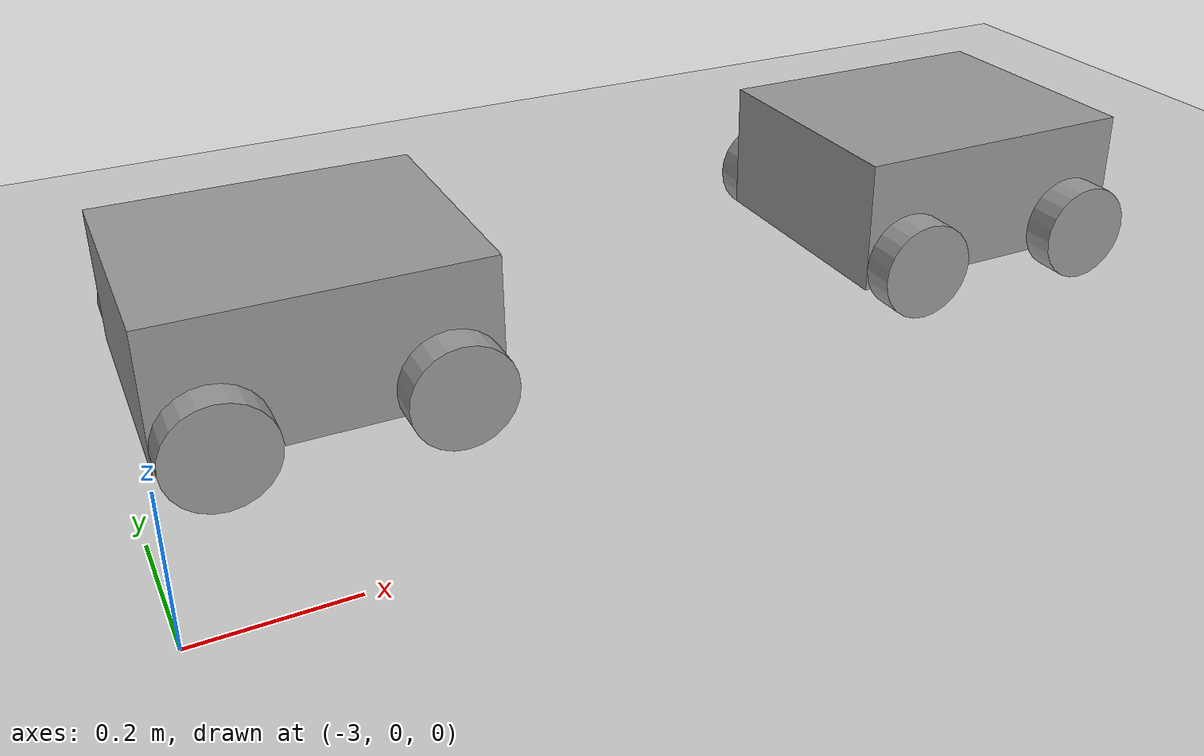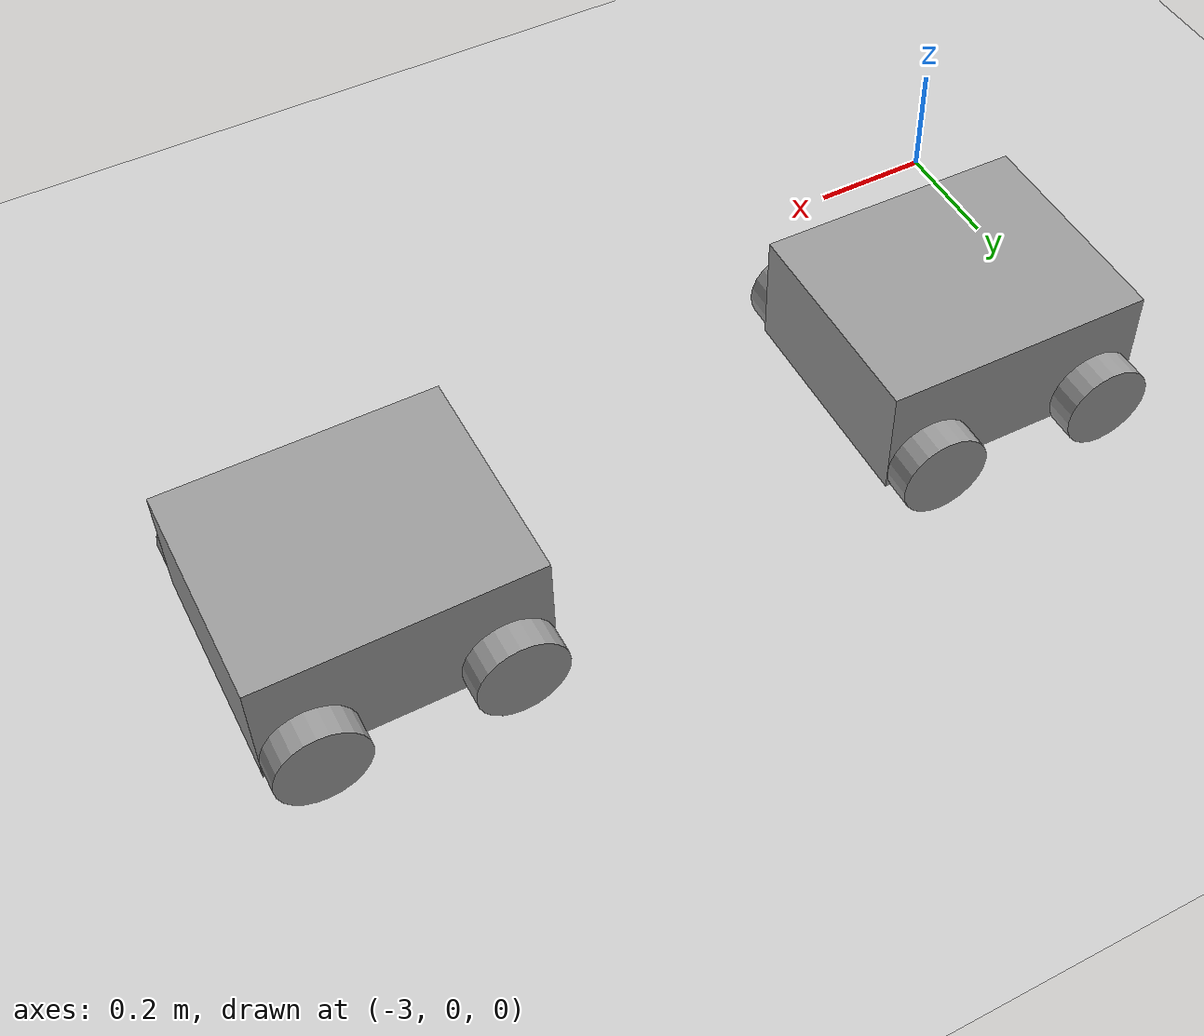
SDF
<sdf version="1.6">
 <world name="default">
  <model name="ground_plane">
   <static>1</static>
   <link name="link">
    <collision name="collision">
     <geometry><plane><normal>0 0 1</normal><size>100 100</size></plane></geometry>
     <surface><friction><ode><mu>100</mu><mu2>50</mu2></ode></friction></surface>
    </collision>
    <visual name="visual">
     <cast_shadows>0</cast_shadows>
     <geometry><plane><normal>0 0 1</normal><size>100 100</size></plane></geometry>
     <material>
      <script><uri>file://media/materials/scripts/gazebo.material</uri><name>Gazebo/Grey</name></script>
     </material>
    </visual>
   </link>
  </model>
  <model name="FourWheelRobot">
   <link name="link_0">
    <pose>-0 -9.6e-05 0.052002 0 -0 0</pose>
    <inertial>
     <mass>4.34169</mass>
     <inertia>
      <ixx>0.067015</ixx>
      <ixy>0</ixy>
      <ixz>0</ixz>
      <iyy>0.0896058</iyy>
      <iyz>0</iyz>
      <izz>0.127676</izz>
     </inertia>
    </inertial>
    <visual name="visual">
     <geometry><box><size>0.455699 0.381081 0.2</size></box></geometry>
     <material>
      <lighting>1</lighting>
      <script><uri>file://media/materials/scripts/gazebo.material</uri><name>Gazebo/Grey</name></script>
      <shader type="pixel"><normal_map>__default__</normal_map></shader>
      <ambient>0.3 0.3 0.3 1</ambient>
      <diffuse>0.7 0.7 0.7 1</diffuse>
      <specular>0.01 0.01 0.01 1</specular>
      <emissive>0 0 0 1</emissive>
     </material>
    </visual>
    <collision name="collision">
     <geometry><box><size>0.455699 0.381081 0.2</size></box></geometry>
     <surface>
      <friction>
       <ode><mu>1</mu><mu2>1</mu2><fdir1>0 0 0</fdir1><slip1>0</slip1><slip2>0</slip2></ode>
       <torsional>
        <coefficient>1</coefficient>
        <patch_radius>0</patch_radius>
        <surface_radius>0</surface_radius>
        <use_patch_radius>1</use_patch_radius>
        <ode><slip>0</slip></ode>
       </torsional>
      </friction>
      <bounce><restitution_coefficient>0</restitution_coefficient><threshold>1e+06</threshold></bounce>
      <contact>
       <collide_without_contact>0</collide_without_contact>
       <collide_without_contact_bitmask>1</collide_without_contact_bitmask>
       <collide_bitmask>1</collide_bitmask>
       <ode>
        <soft_cfm>0</soft_cfm>
        <soft_erp>0.2</soft_erp>
        <kp>1e+13</kp>
        <kd>1</kd>
        <max_vel>0.01</max_vel>
        <min_depth>0</min_depth>
       </ode>
       <bullet>
        <split_impulse>1</split_impulse>
        <split_impulse_penetration_threshold>-0.01</split_impulse_penetration_threshold>
        <soft_cfm>0</soft_cfm>
        <soft_erp>0.2</soft_erp>
        <kp>1e+13</kp>
        <kd>1</kd>
       </bullet>
      </contact>
     </surface>
    </collision>
   </link>
   <link name="link_1">
    <pose>-0.152849 0.215931 -0.013 1.5707 -0 0</pose>
    <inertial>
     <mass>1</mass>
     <inertia><ixx>0.145833</ixx><ixy>0</ixy><ixz>0</ixz><iyy>0.145833</iyy><iyz>0</iyz><izz>0.125</izz></inertia>
    </inertial>
    <visual name="visual">
     <geometry><cylinder><radius>0.075</radius><length>0.05</length></cylinder></geometry>
     <material>
      <lighting>1</lighting>
      <script><uri>file://media/materials/scripts/gazebo.material</uri><name>Gazebo/Grey</name></script>
      <shader type="pixel"><normal_map>__default__</normal_map></shader>
      <ambient>0.3 0.3 0.3 1</ambient>
      <diffuse>0.7 0.7 0.7 1</diffuse>
      <specular>0.01 0.01 0.01 1</specular>
      <emissive>0 0 0 1</emissive>
     </material>
    </visual>
    <collision name="collision">
     <geometry><cylinder><radius>0.075</radius><length>0.05</length></cylinder></geometry>
     <surface>
      <friction>
       <ode><mu>1</mu><mu2>1</mu2><fdir1>0 0 0</fdir1><slip1>0</slip1><slip2>0</slip2></ode>
       <torsional>
        <coefficient>1</coefficient>
        <patch_radius>0</patch_radius>
        <surface_radius>0</surface_radius>
        <use_patch_radius>1</use_patch_radius>
        <ode><slip>0</slip></ode>
       </torsional>
      </friction>
      <bounce><restitution_coefficient>0</restitution_coefficient><threshold>1e+06</threshold></bounce>
      <contact>
       <collide_without_contact>0</collide_without_contact>
       <collide_without_contact_bitmask>1</collide_without_contact_bitmask>
       <collide_bitmask>1</collide_bitmask>
       <ode>
        <soft_cfm>0</soft_cfm>
        <soft_erp>0.2</soft_erp>
        <kp>1e+13</kp>
        <kd>1</kd>
        <max_vel>0.01</max_vel>
        <min_depth>0</min_depth>
       </ode>
       <bullet>
        <split_impulse>1</split_impulse>
        <split_impulse_penetration_threshold>-0.01</split_impulse_penetration_threshold>
        <soft_cfm>0</soft_cfm>
        <soft_erp>0.2</soft_erp>
        <kp>1e+13</kp>
        <kd>1</kd>
       </bullet>
      </contact>
     </surface>
    </collision>
   </link>
   <link name="link_1_clone">
    <pose>-0.152849 -0.215644 -0.013 1.5707 -0 0</pose>
    <inertial>
     <mass>1</mass>
     <inertia><ixx>0.145833</ixx><ixy>0</ixy><ixz>0</ixz><iyy>0.145833</iyy><iyz>0</iyz><izz>0.125</izz></inertia>
    </inertial>
    <visual name="visual">
     <geometry><cylinder><radius>0.075</radius><length>0.05</length></cylinder></geometry>
     <material>
      <lighting>1</lighting>
      <script><uri>file://media/materials/scripts/gazebo.material</uri><name>Gazebo/Grey</name></script>
      <shader type="pixel"><normal_map>__default__</normal_map></shader>
      <ambient>0.3 0.3 0.3 1</ambient>
      <diffuse>0.7 0.7 0.7 1</diffuse>
      <specular>0.01 0.01 0.01 1</specular>
      <emissive>0 0 0 1</emissive>
     </material>
    </visual>
    <collision name="collision">
     <geometry><cylinder><radius>0.075</radius><length>0.05</length></cylinder></geometry>
     <surface>
      <friction>
       <ode><mu>1</mu><mu2>1</mu2><fdir1>0 0 0</fdir1><slip1>0</slip1><slip2>0</slip2></ode>
       <torsional>
        <coefficient>1</coefficient>
        <patch_radius>0</patch_radius>
        <surface_radius>0</surface_radius>
        <use_patch_radius>1</use_patch_radius>
        <ode><slip>0</slip></ode>
       </torsional>
      </friction>
      <bounce><restitution_coefficient>0</restitution_coefficient><threshold>1e+06</threshold></bounce>
      <contact>
       <collide_without_contact>0</collide_without_contact>
       <collide_without_contact_bitmask>1</collide_without_contact_bitmask>
       <collide_bitmask>1</collide_bitmask>
       <ode>
        <soft_cfm>0</soft_cfm>
        <soft_erp>0.2</soft_erp>
        <kp>1e+13</kp>
        <kd>1</kd>
        <max_vel>0.01</max_vel>
        <min_depth>0</min_depth>
       </ode>
       <bullet>
        <split_impulse>1</split_impulse>
        <split_impulse_penetration_threshold>-0.01</split_impulse_penetration_threshold>
        <soft_cfm>0</soft_cfm>
        <soft_erp>0.2</soft_erp>
        <kp>1e+13</kp>
        <kd>1</kd>
       </bullet>
      </contact>
     </surface>
    </collision>
   </link>
   <link name="link_1_clone_0">
    <pose>0.152849 0.215452 -0.013 1.5707 -0 0</pose>
    <inertial>
     <mass>1</mass>
     <inertia><ixx>0.145833</ixx><ixy>0</ixy><ixz>0</ixz><iyy>0.145833</iyy><iyz>0</iyz><izz>0.125</izz></inertia>
    </inertial>
    <visual name="visual">
     <geometry><cylinder><radius>0.075</radius><length>0.05</length></cylinder></geometry>
     <material>
      <lighting>1</lighting>
      <script><uri>file://media/materials/scripts/gazebo.material</uri><name>Gazebo/Grey</name></script>
      <shader type="pixel"><normal_map>__default__</normal_map></shader>
      <ambient>0.3 0.3 0.3 1</ambient>
      <diffuse>0.7 0.7 0.7 1</diffuse>
      <specular>0.01 0.01 0.01 1</specular>
      <emissive>0 0 0 1</emissive>
     </material>
    </visual>
    <collision name="collision">
     <geometry><cylinder><radius>0.075</radius><length>0.05</length></cylinder></geometry>
     <surface>
      <friction>
       <ode><mu>1</mu><mu2>1</mu2><fdir1>0 0 0</fdir1><slip1>0</slip1><slip2>0</slip2></ode>
       <torsional>
        <coefficient>1</coefficient>
        <patch_radius>0</patch_radius>
        <surface_radius>0</surface_radius>
        <use_patch_radius>1</use_patch_radius>
        <ode><slip>0</slip></ode>
       </torsional>
      </friction>
      <bounce><restitution_coefficient>0</restitution_coefficient><threshold>1e+06</threshold></bounce>
      <contact>
       <collide_without_contact>0</collide_without_contact>
       <collide_without_contact_bitmask>1</collide_without_contact_bitmask>
       <collide_bitmask>1</collide_bitmask>
       <ode>
        <soft_cfm>0</soft_cfm>
        <soft_erp>0.2</soft_erp>
        <kp>1e+13</kp>
        <kd>1</kd>
        <max_vel>0.01</max_vel>
        <min_depth>0</min_depth>
       </ode>
       <bullet>
        <split_impulse>1</split_impulse>
        <split_impulse_penetration_threshold>-0.01</split_impulse_penetration_threshold>
        <soft_cfm>0</soft_cfm>
        <soft_erp>0.2</soft_erp>
        <kp>1e+13</kp>
        <kd>1</kd>
       </bullet>
      </contact>
     </surface>
    </collision>
   </link>
   <link name="link_1_clone_1">
    <pose>0.152849 -0.215644 -0.013 1.5707 -0 0</pose>
    <inertial>
     <mass>1</mass>
     <inertia><ixx>0.145833</ixx><ixy>0</ixy><ixz>0</ixz><iyy>0.145833</iyy><iyz>0</iyz><izz>0.125</izz></inertia>
    </inertial>
    <visual name="visual">
     <geometry><cylinder><radius>0.075</radius><length>0.05</length></cylinder></geometry>
     <material>
      <lighting>1</lighting>
      <script><uri>file://media/materials/scripts/gazebo.material</uri><name>Gazebo/Grey</name></script>
      <shader type="pixel"><normal_map>__default__</normal_map></shader>
      <ambient>0.3 0.3 0.3 1</ambient>
      <diffuse>0.7 0.7 0.7 1</diffuse>
      <specular>0.01 0.01 0.01 1</specular>
      <emissive>0 0 0 1</emissive>
     </material>
    </visual>
    <collision name="collision">
     <geometry><cylinder><radius>0.075</radius><length>0.05</length></cylinder></geometry>
     <surface>
      <friction>
       <ode><mu>1</mu><mu2>1</mu2><fdir1>0 0 0</fdir1><slip1>0</slip1><slip2>0</slip2></ode>
       <torsional>
        <coefficient>1</coefficient>
        <patch_radius>0</patch_radius>
        <surface_radius>0</surface_radius>
        <use_patch_radius>1</use_patch_radius>
        <ode><slip>0</slip></ode>
       </torsional>
      </friction>
      <bounce><restitution_coefficient>0</restitution_coefficient><threshold>1e+06</threshold></bounce>
      <contact>
       <collide_without_contact>0</collide_without_contact>
       <collide_without_contact_bitmask>1</collide_without_contact_bitmask>
       <collide_bitmask>1</collide_bitmask>
       <ode>
        <soft_cfm>0</soft_cfm>
        <soft_erp>0.2</soft_erp>
        <kp>1e+13</kp>
        <kd>1</kd>
        <max_vel>0.01</max_vel>
        <min_depth>0</min_depth>
       </ode>
       <bullet>
        <split_impulse>1</split_impulse>
        <split_impulse_penetration_threshold>-0.01</split_impulse_penetration_threshold>
        <soft_cfm>0</soft_cfm>
        <soft_erp>0.2</soft_erp>
        <kp>1e+13</kp>
        <kd>1</kd>
       </bullet>
      </contact>
     </surface>
    </collision>
   </link>
   <joint name="link_0_JOINT_0" type="revolute">
    <parent>link_0</parent>
    <child>link_1_clone</child>
    <axis>
     <xyz>0 0 1</xyz>
     <use_parent_model_frame>0</use_parent_model_frame>
     <limit>
      <lower>-1.79769e+308</lower>
      <upper>1.79769e+308</upper>
      <effort>-1</effort>
      <velocity>-1</velocity>
     </limit>
     <dynamics>
      <spring_reference>0</spring_reference>
      <spring_stiffness>0</spring_stiffness>
      <damping>0</damping>
     </dynamics>
    </axis>
    <physics>
     <ode><limit><cfm>0</cfm><erp>0.2</erp></limit><suspension><cfm>0</cfm><erp>0.2</erp></suspension></ode>
    </physics>
   </joint>
   <joint name="link_0_JOINT_1" type="revolute">
    <parent>link_0</parent>
    <child>link_1_clone_1</child>
    <axis>
     <xyz>0 0 1</xyz>
     <use_parent_model_frame>0</use_parent_model_frame>
     <limit>
      <lower>-1.79769e+308</lower>
      <upper>1.79769e+308</upper>
      <effort>-1</effort>
      <velocity>-1</velocity>
     </limit>
     <dynamics>
      <spring_reference>0</spring_reference>
      <spring_stiffness>0</spring_stiffness>
      <damping>0</damping>
      <friction>0</friction>
     </dynamics>
    </axis>
    <physics>
     <ode><limit><cfm>0</cfm><erp>0.2</erp></limit><suspension><cfm>0</cfm><erp>0.2</erp></suspension></ode>
    </physics>
   </joint>
   <joint name="link_0_JOINT_2" type="revolute">
    <parent>link_0</parent>
    <child>link_1</child>
    <axis>
     <xyz>0 0 1</xyz>
     <use_parent_model_frame>0</use_parent_model_frame>
     <limit>
      <lower>-1.79769e+308</lower>
      <upper>1.79769e+308</upper>
      <effort>-1</effort>
      <velocity>-1</velocity>
     </limit>
     <dynamics>
      <spring_reference>0</spring_reference>
      <spring_stiffness>0</spring_stiffness>
      <damping>0</damping>
      <friction>0</friction>
     </dynamics>
    </axis>
    <physics>
     <ode><limit><cfm>0</cfm><erp>0.2</erp></limit><suspension><cfm>0</cfm><erp>0.2</erp></suspension></ode>
    </physics>
   </joint>
   <joint name="link_0_JOINT_3" type="revolute">
    <parent>link_0</parent>
    <child>link_1_clone_0</child>
    <axis>
     <xyz>0 0 1</xyz>
     <use_parent_model_frame>0</use_parent_model_frame>
     <limit>
      <lower>-1.79769e+308</lower>
      <upper>1.79769e+308</upper>
      <effort>-1</effort>
      <velocity>-1</velocity>
     </limit>
     <dynamics>
      <spring_reference>0</spring_reference>
      <spring_stiffness>0</spring_stiffness>
      <damping>0</damping>
     </dynamics>
    </axis>
    <physics>
     <ode><limit><cfm>0</cfm><erp>0.2</erp></limit><suspension><cfm>0</cfm><erp>0.2</erp></suspension></ode>
    </physics>
   </joint>
   <static>0</static>
   <pose>-2.74305 0.461243 0.087998 -1e-06 -3.2e-05 -0.01159</pose>
  </model>
  <model name="FourWheelRobot_0">
   <link name="link_0">
    <pose>-0 -9.6e-05 0.052002 0 -0 0</pose>
    <inertial>
     <mass>4.34169</mass>
     <inertia>
      <ixx>0.067015</ixx>
      <ixy>0</ixy>
      <ixz>0</ixz>
      <iyy>0.0896058</iyy>
      <iyz>0</iyz>
      <izz>0.127676</izz>
     </inertia>
    </inertial>
    <visual name="visual">
     <geometry><box><size>0.455699 0.381081 0.2</size></box></geometry>
     <material>
      <lighting>1</lighting>
      <script><uri>file://media/materials/scripts/gazebo.material</uri><name>Gazebo/Grey</name></script>
      <shader type="pixel"><normal_map>__default__</normal_map></shader>
      <ambient>0.3 0.3 0.3 1</ambient>
      <diffuse>0.7 0.7 0.7 1</diffuse>
      <specular>0.01 0.01 0.01 1</specular>
      <emissive>0 0 0 1</emissive>
     </material>
    </visual>
    <collision name="collision">
     <geometry><box><size>0.455699 0.381081 0.2</size></box></geometry>
     <surface>
      <friction>
       <ode><mu>1</mu><mu2>1</mu2><fdir1>0 0 0</fdir1><slip1>0</slip1><slip2>0</slip2></ode>
       <torsional>
        <coefficient>1</coefficient>
        <patch_radius>0</patch_radius>
        <surface_radius>0</surface_radius>
        <use_patch_radius>1</use_patch_radius>
        <ode><slip>0</slip></ode>
       </torsional>
      </friction>
      <bounce><restitution_coefficient>0</restitution_coefficient><threshold>1e+06</threshold></bounce>
      <contact>
       <collide_without_contact>0</collide_without_contact>
       <collide_without_contact_bitmask>1</collide_without_contact_bitmask>
       <collide_bitmask>1</collide_bitmask>
       <ode>
        <soft_cfm>0</soft_cfm>
        <soft_erp>0.2</soft_erp>
        <kp>1e+13</kp>
        <kd>1</kd>
        <max_vel>0.01</max_vel>
        <min_depth>0</min_depth>
       </ode>
       <bullet>
        <split_impulse>1</split_impulse>
        <split_impulse_penetration_threshold>-0.01</split_impulse_penetration_threshold>
        <soft_cfm>0</soft_cfm>
        <soft_erp>0.2</soft_erp>
        <kp>1e+13</kp>
        <kd>1</kd>
       </bullet>
      </contact>
     </surface>
    </collision>
   </link>
   <link name="link_1">
    <pose>-0.152849 0.215931 -0.013 1.5707 -0 0</pose>
    <inertial>
     <mass>1</mass>
     <inertia><ixx>0.145833</ixx><ixy>0</ixy><ixz>0</ixz><iyy>0.145833</iyy><iyz>0</iyz><izz>0.125</izz></inertia>
    </inertial>
    <visual name="visual">
     <geometry><cylinder><radius>0.075</radius><length>0.05</length></cylinder></geometry>
     <material>
      <lighting>1</lighting>
      <script><uri>file://media/materials/scripts/gazebo.material</uri><name>Gazebo/Grey</name></script>
      <shader type="pixel"><normal_map>__default__</normal_map></shader>
      <ambient>0.3 0.3 0.3 1</ambient>
      <diffuse>0.7 0.7 0.7 1</diffuse>
      <specular>0.01 0.01 0.01 1</specular>
      <emissive>0 0 0 1</emissive>
     </material>
    </visual>
    <collision name="collision">
     <geometry><cylinder><radius>0.075</radius><length>0.05</length></cylinder></geometry>
     <surface>
      <friction>
       <ode><mu>1</mu><mu2>1</mu2><fdir1>0 0 0</fdir1><slip1>0</slip1><slip2>0</slip2></ode>
       <torsional>
        <coefficient>1</coefficient>
        <patch_radius>0</patch_radius>
        <surface_radius>0</surface_radius>
        <use_patch_radius>1</use_patch_radius>
        <ode><slip>0</slip></ode>
       </torsional>
      </friction>
      <bounce><restitution_coefficient>0</restitution_coefficient><threshold>1e+06</threshold></bounce>
      <contact>
       <collide_without_contact>0</collide_without_contact>
       <collide_without_contact_bitmask>1</collide_without_contact_bitmask>
       <collide_bitmask>1</collide_bitmask>
       <ode>
        <soft_cfm>0</soft_cfm>
        <soft_erp>0.2</soft_erp>
        <kp>1e+13</kp>
        <kd>1</kd>
        <max_vel>0.01</max_vel>
        <min_depth>0</min_depth>
       </ode>
       <bullet>
        <split_impulse>1</split_impulse>
        <split_impulse_penetration_threshold>-0.01</split_impulse_penetration_threshold>
        <soft_cfm>0</soft_cfm>
        <soft_erp>0.2</soft_erp>
        <kp>1e+13</kp>
        <kd>1</kd>
       </bullet>
      </contact>
     </surface>
    </collision>
   </link>
   <link name="link_1_clone">
    <pose>-0.152849 -0.215644 -0.013 1.5707 -0 0</pose>
    <inertial>
     <mass>1</mass>
     <inertia><ixx>0.145833</ixx><ixy>0</ixy><ixz>0</ixz><iyy>0.145833</iyy><iyz>0</iyz><izz>0.125</izz></inertia>
    </inertial>
    <visual name="visual">
     <geometry><cylinder><radius>0.075</radius><length>0.05</length></cylinder></geometry>
     <material>
      <lighting>1</lighting>
      <script><uri>file://media/materials/scripts/gazebo.material</uri><name>Gazebo/Grey</name></script>
      <shader type="pixel"><normal_map>__default__</normal_map></shader>
      <ambient>0.3 0.3 0.3 1</ambient>
      <diffuse>0.7 0.7 0.7 1</diffuse>
      <specular>0.01 0.01 0.01 1</specular>
      <emissive>0 0 0 1</emissive>
     </material>
    </visual>
    <collision name="collision">
     <geometry><cylinder><radius>0.075</radius><length>0.05</length></cylinder></geometry>
     <surface>
      <friction>
       <ode><mu>1</mu><mu2>1</mu2><fdir1>0 0 0</fdir1><slip1>0</slip1><slip2>0</slip2></ode>
       <torsional>
        <coefficient>1</coefficient>
        <patch_radius>0</patch_radius>
        <surface_radius>0</surface_radius>
        <use_patch_radius>1</use_patch_radius>
        <ode><slip>0</slip></ode>
       </torsional>
      </friction>
      <bounce><restitution_coefficient>0</restitution_coefficient><threshold>1e+06</threshold></bounce>
      <contact>
       <collide_without_contact>0</collide_without_contact>
       <collide_without_contact_bitmask>1</collide_without_contact_bitmask>
       <collide_bitmask>1</collide_bitmask>
       <ode>
        <soft_cfm>0</soft_cfm>
        <soft_erp>0.2</soft_erp>
        <kp>1e+13</kp>
        <kd>1</kd>
        <max_vel>0.01</max_vel>
        <min_depth>0</min_depth>
       </ode>
       <bullet>
        <split_impulse>1</split_impulse>
        <split_impulse_penetration_threshold>-0.01</split_impulse_penetration_threshold>
        <soft_cfm>0</soft_cfm>
        <soft_erp>0.2</soft_erp>
        <kp>1e+13</kp>
        <kd>1</kd>
       </bullet>
      </contact>
     </surface>
    </collision>
   </link>
   <link name="link_1_clone_0">
    <pose>0.152849 0.215452 -0.013 1.5707 -0 0</pose>
    <inertial>
     <mass>1</mass>
     <inertia><ixx>0.145833</ixx><ixy>0</ixy><ixz>0</ixz><iyy>0.145833</iyy><iyz>0</iyz><izz>0.125</izz></inertia>
    </inertial>
    <visual name="visual">
     <geometry><cylinder><radius>0.075</radius><length>0.05</length></cylinder></geometry>
     <material>
      <lighting>1</lighting>
      <script><uri>file://media/materials/scripts/gazebo.material</uri><name>Gazebo/Grey</name></script>
      <shader type="pixel"><normal_map>__default__</normal_map></shader>
      <ambient>0.3 0.3 0.3 1</ambient>
      <diffuse>0.7 0.7 0.7 1</diffuse>
      <specular>0.01 0.01 0.01 1</specular>
      <emissive>0 0 0 1</emissive>
     </material>
    </visual>
    <collision name="collision">
     <geometry><cylinder><radius>0.075</radius><length>0.05</length></cylinder></geometry>
     <surface>
      <friction>
       <ode><mu>1</mu><mu2>1</mu2><fdir1>0 0 0</fdir1><slip1>0</slip1><slip2>0</slip2></ode>
       <torsional>
        <coefficient>1</coefficient>
        <patch_radius>0</patch_radius>
        <surface_radius>0</surface_radius>
        <use_patch_radius>1</use_patch_radius>
        <ode><slip>0</slip></ode>
       </torsional>
      </friction>
      <bounce><restitution_coefficient>0</restitution_coefficient><threshold>1e+06</threshold></bounce>
      <contact>
       <collide_without_contact>0</collide_without_contact>
       <collide_without_contact_bitmask>1</collide_without_contact_bitmask>
       <collide_bitmask>1</collide_bitmask>
       <ode>
        <soft_cfm>0</soft_cfm>
        <soft_erp>0.2</soft_erp>
        <kp>1e+13</kp>
        <kd>1</kd>
        <max_vel>0.01</max_vel>
        <min_depth>0</min_depth>
       </ode>
       <bullet>
        <split_impulse>1</split_impulse>
        <split_impulse_penetration_threshold>-0.01</split_impulse_penetration_threshold>
        <soft_cfm>0</soft_cfm>
        <soft_erp>0.2</soft_erp>
        <kp>1e+13</kp>
        <kd>1</kd>
       </bullet>
      </contact>
     </surface>
    </collision>
   </link>
   <link name="link_1_clone_1">
    <pose>0.152849 -0.215644 -0.013 1.5707 -0 0</pose>
    <inertial>
     <mass>1</mass>
     <inertia><ixx>0.145833</ixx><ixy>0</ixy><ixz>0</ixz><iyy>0.145833</iyy><iyz>0</iyz><izz>0.125</izz></inertia>
    </inertial>
    <visual name="visual">
     <geometry><cylinder><radius>0.075</radius><length>0.05</length></cylinder></geometry>
     <material>
      <lighting>1</lighting>
      <script><uri>file://media/materials/scripts/gazebo.material</uri><name>Gazebo/Grey</name></script>
      <shader type="pixel"><normal_map>__default__</normal_map></shader>
      <ambient>0.3 0.3 0.3 1</ambient>
      <diffuse>0.7 0.7 0.7 1</diffuse>
      <specular>0.01 0.01 0.01 1</specular>
      <emissive>0 0 0 1</emissive>
     </material>
    </visual>
    <collision name="collision">
     <geometry><cylinder><radius>0.075</radius><length>0.05</length></cylinder></geometry>
     <surface>
      <friction>
       <ode><mu>1</mu><mu2>1</mu2><fdir1>0 0 0</fdir1><slip1>0</slip1><slip2>0</slip2></ode>
       <torsional>
        <coefficient>1</coefficient>
        <patch_radius>0</patch_radius>
        <surface_radius>0</surface_radius>
        <use_patch_radius>1</use_patch_radius>
        <ode><slip>0</slip></ode>
       </torsional>
      </friction>
      <bounce><restitution_coefficient>0</restitution_coefficient><threshold>1e+06</threshold></bounce>
      <contact>
       <collide_without_contact>0</collide_without_contact>
       <collide_without_contact_bitmask>1</collide_without_contact_bitmask>
       <collide_bitmask>1</collide_bitmask>
       <ode>
        <soft_cfm>0</soft_cfm>
        <soft_erp>0.2</soft_erp>
        <kp>1e+13</kp>
        <kd>1</kd>
        <max_vel>0.01</max_vel>
        <min_depth>0</min_depth>
       </ode>
       <bullet>
        <split_impulse>1</split_impulse>
        <split_impulse_penetration_threshold>-0.01</split_impulse_penetration_threshold>
        <soft_cfm>0</soft_cfm>
        <soft_erp>0.2</soft_erp>
        <kp>1e+13</kp>
        <kd>1</kd>
       </bullet>
      </contact>
     </surface>
    </collision>
   </link>
   <joint name="link_0_JOINT_0" type="revolute">
    <parent>link_0</parent>
    <child>link_1_clone</child>
    <axis>
     <xyz>0 0 1</xyz>
     <use_parent_model_frame>0</use_parent_model_frame>
     <limit>
      <lower>-1.79769e+308</lower>
      <upper>1.79769e+308</upper>
      <effort>-1</effort>
      <velocity>-1</velocity>
     </limit>
     <dynamics>
      <spring_reference>0</spring_reference>
      <spring_stiffness>0</spring_stiffness>
      <damping>0</damping>
     </dynamics>
    </axis>
    <physics>
     <ode><limit><cfm>0</cfm><erp>0.2</erp></limit><suspension><cfm>0</cfm><erp>0.2</erp></suspension></ode>
    </physics>
   </joint>
   <joint name="link_0_JOINT_1" type="revolute">
    <parent>link_0</parent>
    <child>link_1_clone_1</child>
    <axis>
     <xyz>0 0 1</xyz>
     <use_parent_model_frame>0</use_parent_model_frame>
     <limit>
      <lower>-1.79769e+308</lower>
      <upper>1.79769e+308</upper>
      <effort>-1</effort>
      <velocity>-1</velocity>
     </limit>
     <dynamics>
      <spring_reference>0</spring_reference>
      <spring_stiffness>0</spring_stiffness>
      <damping>0</damping>
      <friction>0</friction>
     </dynamics>
    </axis>
    <physics>
     <ode><limit><cfm>0</cfm><erp>0.2</erp></limit><suspension><cfm>0</cfm><erp>0.2</erp></suspension></ode>
    </physics>
   </joint>
   <joint name="link_0_JOINT_2" type="revolute">
    <parent>link_0</parent>
    <child>link_1</child>
    <axis>
     <xyz>0 0 1</xyz>
     <use_parent_model_frame>0</use_parent_model_frame>
     <limit>
      <lower>-1.79769e+308</lower>
      <upper>1.79769e+308</upper>
      <effort>-1</effort>
      <velocity>-1</velocity>
     </limit>
     <dynamics>
      <spring_reference>0</spring_reference>
      <spring_stiffness>0</spring_stiffness>
      <damping>0</damping>
      <friction>0</friction>
     </dynamics>
    </axis>
    <physics>
     <ode><limit><cfm>0</cfm><erp>0.2</erp></limit><suspension><cfm>0</cfm><erp>0.2</erp></suspension></ode>
    </physics>
   </joint>
   <joint name="link_0_JOINT_3" type="revolute">
    <parent>link_0</parent>
    <child>link_1_clone_0</child>
    <axis>
     <xyz>0 0 1</xyz>
     <use_parent_model_frame>0</use_parent_model_frame>
     <limit>
      <lower>-1.79769e+308</lower>
      <upper>1.79769e+308</upper>
      <effort>-1</effort>
      <velocity>-1</velocity>
     </limit>
     <dynamics>
      <spring_reference>0</spring_reference>
      <spring_stiffness>0</spring_stiffness>
      <damping>0</damping>
     </dynamics>
    </axis>
    <physics>
     <ode><limit><cfm>0</cfm><erp>0.2</erp></limit><suspension><cfm>0</cfm><erp>0.2</erp></suspension></ode>
    </physics>
   </joint>
   <static>0</static>
   <pose>-1.69811 0.485594 0.087999 0 2.3e-05 0.001149</pose>
  </model>
 </world>
</sdf>
